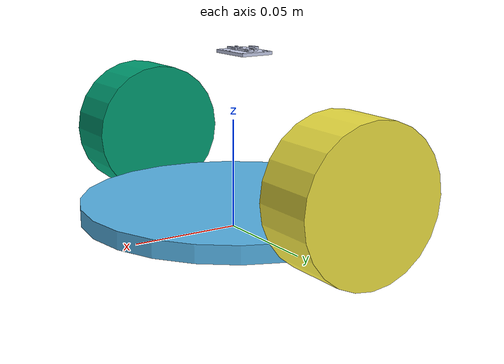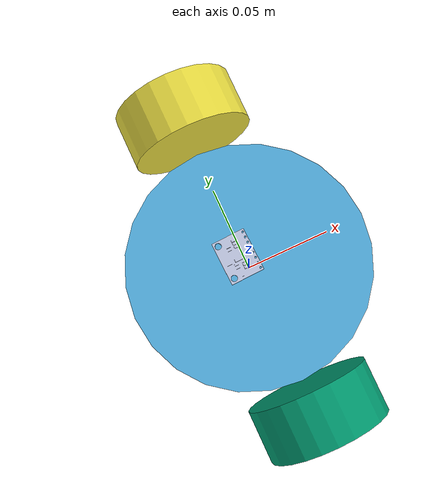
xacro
<?xml version="1.0"?>

<robot name="robot" xmlns:xacro="http://ros.org/wiki/xacro">

  <!-- Gazebo Parameters -->
  <xacro:include filename="$(find robot_description)/urdf/robot_gazebo.xacro" />
  <!-- ros2_control plugins -->
  <xacro:include filename="$(find robot_description)/urdf/robot_ros2_control.xacro" />

  <!-- ========================== Variables ========================== -->
  <!-- Wheel properties -->
  <xacro:property name="wheel_diameter" value="0.066"/>
  <xacro:property name="wheel_radius" value="${wheel_diameter/2}"/>
  <xacro:property name="wheel_length" value="0.028"/>
  <xacro:property name="wheel_mass" value="0.0530086090966721"/>
  <!-- Wheel moment of inertia equation -->
  <xacro:property name="wheel_inertia_Ixx" value="${wheel_mass*(3*wheel_radius*wheel_radius + wheel_length*wheel_length)/12}"/>
  <xacro:property name="wheel_inertia_Iyy" value="${wheel_inertia_Ixx}"/>
  <xacro:property name="wheel_inertia_Izz" value="${wheel_mass*wheel_radius*wheel_radius/2}"/>
  <!-- Chassi properties -->
  <xacro:property name="chassis_diameter" value="0.14"/>
  <xacro:property name="chassis_radius" value="${chassis_diameter/2}"/>
  <xacro:property name="chassis_thickness" value="0.008"/>
  <xacro:property name="chassis_distance_from_floor" value="0.01"/>
  <xacro:property name="chassis_mass" value="8.2573504E-01"/>
  <!-- Chassi moment of inertia equation -->
  <xacro:property name="chassis_inertia_Ixx" value="${chassis_mass*(3*chassis_radius*chassis_radius + chassis_thickness*chassis_thickness)/12}"/>
  <xacro:property name="chassis_inertia_Iyy" value="${chassis_inertia_Ixx}"/>
  <xacro:property name="chassis_inertia_Izz" value="${chassis_mass*chassis_radius*chassis_radius/2}"/>
  <!-- Caster wheel properties -->
  <xacro:property name="caster_wheel_diameter" value="${chassis_distance_from_floor}"/>
  <xacro:property name="caster_wheel_radius" value="${caster_wheel_diameter/2}"/>
  <xacro:property name="caster_wheel_mass" value="1.44379265037903E-06"/>
  <!-- Caster wheel moment of inertia equation -->
  <xacro:property name="caster_wheel_inertia_Ixx" value="${2*caster_wheel_mass*caster_wheel_radius*caster_wheel_radius/5}"/>
  <xacro:property name="caster_wheel_inertia_Iyy" value="${caster_wheel_inertia_Ixx}"/>
  <xacro:property name="caster_wheel_inertia_Izz" value="${caster_wheel_inertia_Ixx}"/>
  <!-- Degrees to radians-->
  <xacro:property name="deg2rad" value="${pi/180}"/>
  <!-- Meters to centimeters -->
  <xacro:property name="cm2m" value="${1/100}"/>

  <!-- ========================== Links ========================== -->
  <!-- Reference -->
  <link name="base_footprint"/>
  <!-- Chassis -->
  <link name="base_link">
    <visual>
      <origin xyz="0 0 0" rpy="0 0 0" />
      <geometry>
        <cylinder radius="${chassis_radius}" length="${chassis_thickness}"/>
      </geometry>
    </visual>
    <!-- Defining the geometry and params for Gazebo simulation -->
    <collision>
      <origin xyz="0 0 0" rpy="0 0 0" />
      <geometry>
        <cylinder radius="${chassis_radius}" length="${chassis_thickness}"/>
      </geometry>
    </collision>
    <inertial>
      <origin xyz="0 0 0.025" rpy="0.0 0 0"/>
      <mass value="${chassis_mass}"/>
      <inertia ixx="${chassis_inertia_Ixx}" ixy="0" ixz="0"
          iyy="${chassis_inertia_Iyy}" iyz="0"
          izz="${chassis_inertia_Izz}"/>
    </inertial>
  </link>
  <!-- Right wheel -->
  <link name="wheel_right_link">
    <visual>
      <geometry>
          <cylinder radius="${wheel_radius}" length="${wheel_length}"/>
      </geometry>
      <origin xyz="0 0 0" rpy="${90*deg2rad} 0 0"/>
    </visual>
    <!-- Defining the geometry and params for Gazebo simulation -->
    <collision>
      <geometry>
          <cylinder radius="${wheel_radius}" length="${wheel_length}"/>
      </geometry>
      <origin xyz="0 ${-0.015} 0" rpy="${90*deg2rad} 0 0"/>
    </collision>
    <inertial>
      <origin xyz="0 -0.014 0" rpy="0 0 0" />
      <mass value="${wheel_mass}"/>
      <inertia ixx="${wheel_inertia_Ixx}" ixy="0" ixz="0"
        iyy="${wheel_inertia_Iyy}" iyz="0"
        izz="${wheel_inertia_Izz}"/>
    </inertial>
  </link>
  <!-- Left wheel -->
  <link name="wheel_left_link">
    <visual>
      <geometry>
          <cylinder radius="${wheel_radius}" length="${wheel_length}"/>
      </geometry>
      <origin xyz="0 0 0" rpy="${90*deg2rad} 0 0"/>
    </visual>
    <!-- Defining the geometry and params for Gazebo simulation -->
    <collision>
        <geometry>
            <cylinder radius="${wheel_radius}" length="${wheel_length}"/>
        </geometry>
        <origin xyz="0 ${0.015} 0" rpy="${90*deg2rad} 0 0"/>
    </collision>
    <inertial>
        <origin xyz="0 0.014 0" rpy="0 0 0" />
        <mass value="${wheel_mass}"/>
        <inertia ixx="${wheel_inertia_Ixx}" ixy="0" ixz="0"
          iyy="${wheel_inertia_Iyy}" iyz="0"
          izz="${wheel_inertia_Izz}"/>
    </inertial>
  </link>
  <!-- Front caster wheel-->
  <link name="caster_front_link">
    <visual>
      <geometry>
          <sphere radius="${caster_wheel_diameter/2}"/>
      </geometry>
      <origin xyz="0 0 0" rpy="0 0 0"/>
    </visual>
    <!-- Defining the geometry and params for Gazebo simulation -->
    <collision>
        <geometry>
            <sphere radius="${caster_wheel_diameter/2}"/>
        </geometry>
        <origin xyz="0 0 0" rpy="0 0 0"/>
    </collision>
    <inertial>
      <origin xyz="0 0 0" rpy="0 0 0" />
        <mass value="${caster_wheel_mass}"/>
        <inertia ixx="${caster_wheel_inertia_Ixx}" ixy="0" ixz="0"
          iyy="${caster_wheel_inertia_Iyy}" iyz="0"
          izz="${caster_wheel_inertia_Izz}"/>
    </inertial>
  </link>
  <!-- Rear caster wheel -->
  <link name="caster_rear_link">
    <visual>
      <geometry>
          <sphere radius="${caster_wheel_diameter/2}"/>
      </geometry>
      <origin xyz="0 0 0" rpy="0 0 0"/>
    </visual>
    <!-- Defining the geometry and params for Gazebo simulation -->
    <collision>
        <geometry>
            <sphere radius="${caster_wheel_diameter/2}"/>
        </geometry>
        <origin xyz="0 0 0" rpy="0 0 0"/>
    </collision>
    <inertial>
        <origin xyz="0 0 0" rpy="0 0 0" />
        <mass value="${caster_wheel_mass}"/>
        <inertia ixx="${caster_wheel_inertia_Ixx}" ixy="0" ixz="0"
          iyy="${caster_wheel_inertia_Iyy}" iyz="0"
          izz="${caster_wheel_inertia_Izz}"/>
    </inertial>
  </link>
  <!-- IMU sensor -->
  <link name="imu_link">
    <visual>
      <origin xyz="0 0 0" rpy="0 0 0" />
      <geometry>
        <mesh filename="package://bumperbot_description/meshes/imu_link.STL" />
      </geometry>
      <material name="">
        <color rgba="0.792156862745098 0.819607843137255 0.933333333333333 1" />
      </material>
    </visual>
    <collision>
      <origin xyz="0 0 0" rpy="0 0 0" />
      <geometry>
        <mesh filename="package://bumperbot_description/meshes/imu_link.STL" />
      </geometry>
    </collision>
    <inertial>
      <origin xyz="-0.00552433659106688 0.000168210391520346 0.000514000497342681" rpy="0 0 0" />
      <mass value="0.000528415362211671" />
      <inertia ixx="1.46176048428261E-08" ixy="1.40015117949421E-10" ixz="-1.99633872937403E-12"
               iyy="8.59662482954888E-09" iyz="7.52375112767959E-12"
               izz="2.30279421279312E-08" />
    </inertial>
  </link>

  <!-- ========================== Joints ========================== -->
  <!-- Chassis -->
  <joint name="base_joint" type="fixed">
    <parent link="base_footprint"/>
    <child link="base_link"/>
    <origin xyz="0 0 ${chassis_distance_from_floor}" rpy="0 0 0"/>
  </joint>
  <!-- Right wheel -->
  <joint name="wheel_right_joint" type="continuous">
    <parent link="base_link"/>
    <child link="wheel_right_link"/>
    <origin xyz="0 ${-(wheel_length + chassis_diameter)/2} ${wheel_radius - chassis_distance_from_floor}" rpy="0 0 0"/>
    <axis xyz="0 1 0" />
  </joint>
  <!-- Left wheel -->
  <joint name="wheel_left_joint" type="continuous">
    <parent link="base_link"/>
    <child link="wheel_left_link"/>
    <origin xyz="0 ${(wheel_length + chassis_diameter)/2} ${wheel_radius - chassis_distance_from_floor}" rpy="0 0 0"/>
    <axis xyz="0 1 0" />
  </joint>
  <!-- Front caster wheel -->
  <joint name="caster_front_joint" type="fixed">
    <parent link="base_link"/>
    <child link="caster_front_link"/>
    <origin xyz="${chassis_radius - 2*cm2m} 0 ${-chassis_distance_from_floor/2}" rpy="0 0 0"/>
  </joint>
  <!-- Rear caster wheel -->
  <joint name="caster_rear_joint" type="fixed">
    <parent link="base_link"/>
    <child link="caster_rear_link"/>
    <origin xyz="${-(chassis_radius - 2*cm2m)} 0 ${-chassis_distance_from_floor/2}" rpy="0 0 0"/>
  </joint>
  <!-- IMU sensor -->
  <joint name="imu_joint" type="fixed">
    <origin xyz="0 0 0.0698986241758014" rpy="0 0 0" />
    <parent link="base_link" />
    <child link="imu_link" />
    <axis xyz="0 0 0" />
  </joint>

</robot>
